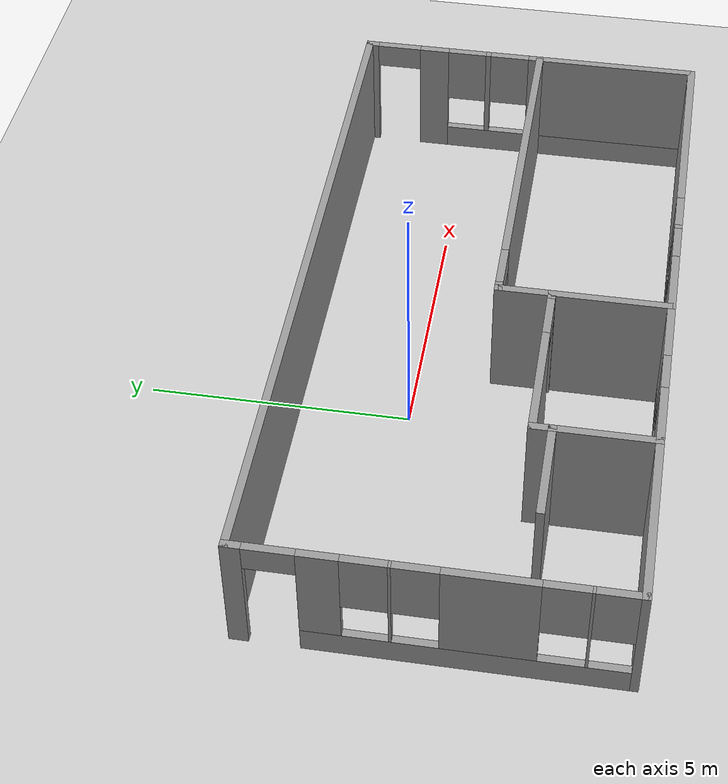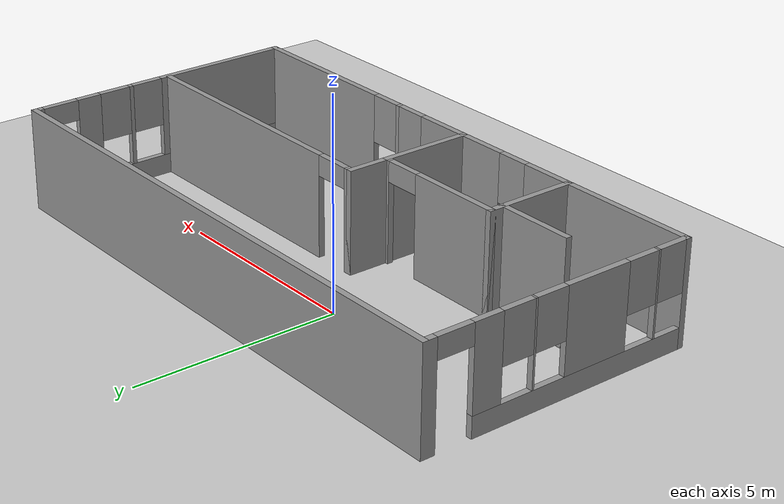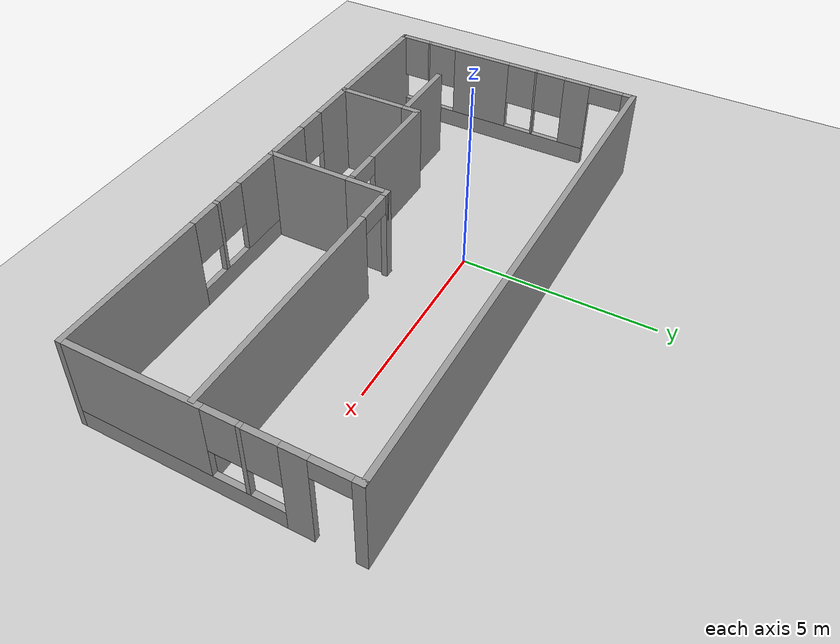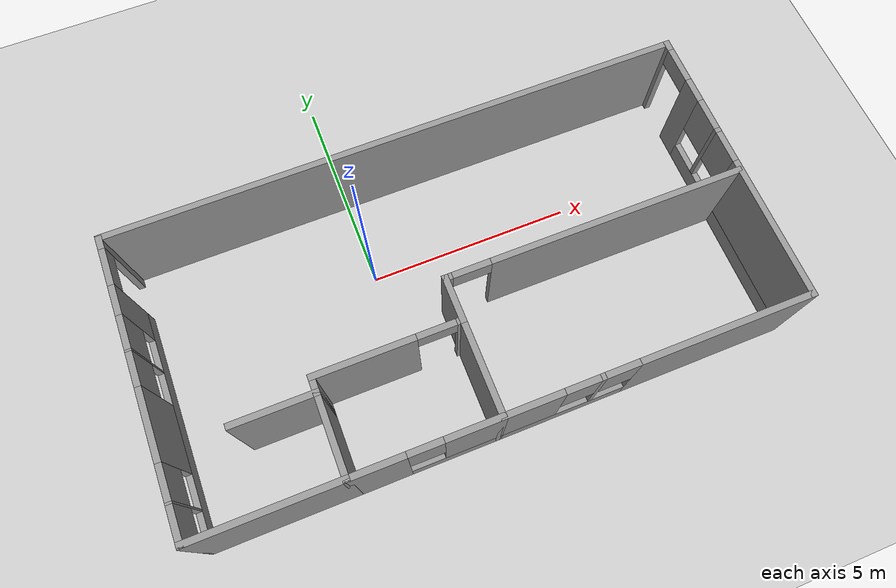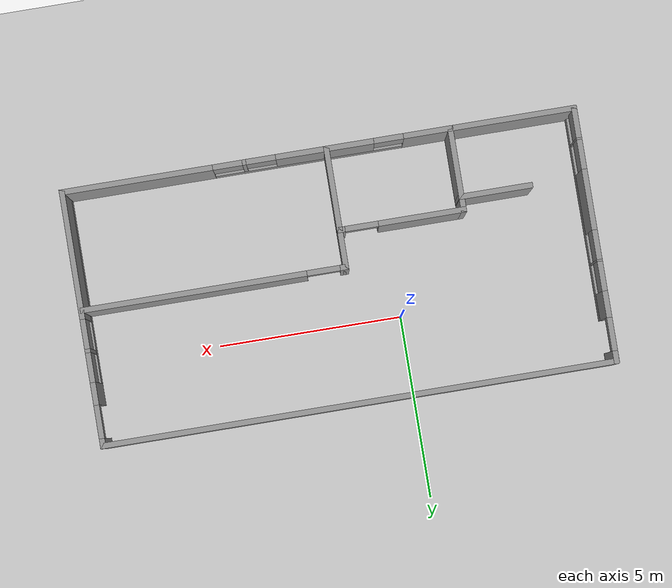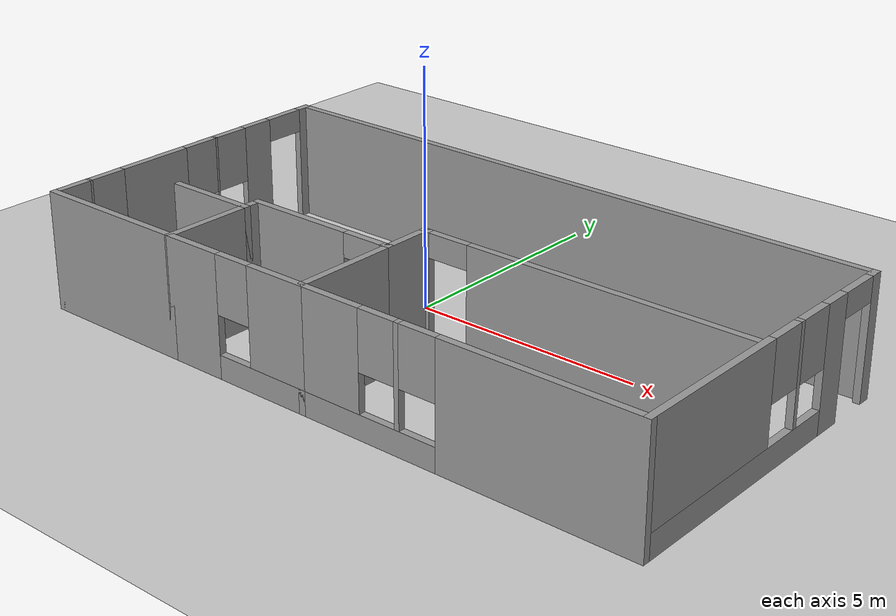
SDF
<sdf version="1.6">
 <world name="default">
  <light name="sun" type="directional">
   <pose>0 0 10 0 -0 0</pose>
   <diffuse>0.8 0.8 0.8 1</diffuse>
   <specular>0.2 0.2 0.2 1</specular>
   <attenuation>
    <range>1000</range>
    <constant>0.9</constant>
    <linear>0.01</linear>
    <quadratic>0.001</quadratic>
   </attenuation>
   <direction>-0.5 0.1 -0.9</direction>
  </light>
  <model name="ground_plane">
   <static>1</static>
   <link name="link">
    <collision name="collision">
     <geometry><plane><normal>0 0 1</normal><size>100 100</size></plane></geometry>
     <surface><friction><ode><mu>100</mu><mu2>50</mu2></ode></friction></surface>
    </collision>
    <visual name="visual">
     <cast_shadows>0</cast_shadows>
     <geometry><plane><normal>0 0 1</normal><size>100 100</size></plane></geometry>
     <material>
      <script><uri>file://media/materials/scripts/gazebo.material</uri><name>Gazebo/Grey</name></script>
     </material>
    </visual>
   </link>
  </model>
  <gravity>0 0 -9.8</gravity>
  <magnetic_field>6e-06 2.3e-05 -4.2e-05</magnetic_field>
  <atmosphere type="adiabatic"/>
  <physics name="default_physics" default="0" type="ode">
   <max_step_size>0.001</max_step_size>
   <real_time_factor>1</real_time_factor>
   <real_time_update_rate>1000</real_time_update_rate>
  </physics>
  <scene><ambient>0.4 0.4 0.4 1</ambient><background>0.7 0.7 0.7 1</background><shadows>1</shadows></scene>
  <spherical_coordinates>
   <surface_model>EARTH_WGS84</surface_model>
   <latitude_deg>0</latitude_deg>
   <longitude_deg>0</longitude_deg>
   <elevation>0</elevation>
   <heading_deg>0</heading_deg>
  </spherical_coordinates>
  <model name="building">
   <pose>1.5027 -1.24911 0 0 -0 0</pose>
   <link name="Wall_11">
    <collision name="Wall_11_Collision">
     <geometry><box><size>3.5 0.15 2.5</size></box></geometry>
     <pose>0 0 1.25 0 -0 0</pose>
    </collision>
    <visual name="Wall_11_Visual">
     <pose>0 0 1.25 0 -0 0</pose>
     <geometry><box><size>3.5 0.15 2.5</size></box></geometry>
     <material>
      <script><uri>file://media/materials/scripts/gazebo.material</uri><name>Gazebo/Grey</name></script>
      <ambient>1 1 1 1</ambient>
     </material>
     <meta><layer>0</layer></meta>
    </visual>
    <pose>-5.25 -3.425 0 0 -0 0</pose>
   </link>
   <link name="Wall_12">
    <collision name="Wall_12_Collision">
     <geometry><box><size>2 0.15 2.5</size></box></geometry>
     <pose>0 0 1.25 0 -0 0</pose>
    </collision>
    <visual name="Wall_12_Visual">
     <pose>0 0 1.25 0 -0 0</pose>
     <geometry><box><size>2 0.15 2.5</size></box></geometry>
     <material>
      <script><uri>file://media/materials/scripts/gazebo.material</uri><name>Gazebo/Grey</name></script>
      <ambient>1 1 1 1</ambient>
     </material>
     <meta><layer>0</layer></meta>
    </visual>
    <pose>-3.575 -2.5 0 0 -0 1.5708</pose>
   </link>
   <link name="Wall_13">
    <collision name="Wall_13_Collision">
     <geometry><box><size>2 0.15 2.5</size></box></geometry>
     <pose>0 0 1.25 0 -0 0</pose>
    </collision>
    <visual name="Wall_13_Visual">
     <pose>0 0 1.25 0 -0 0</pose>
     <geometry><box><size>2 0.15 2.5</size></box></geometry>
     <material>
      <script><uri>file://media/materials/scripts/gazebo.material</uri><name>Gazebo/Grey</name></script>
      <ambient>1 1 1 1</ambient>
     </material>
     <meta><layer>0</layer></meta>
    </visual>
    <pose>-4.5 -1.575 0 0 -0 3.14159</pose>
   </link>
   <link name="Wall_17">
    <collision name="Wall_17_Collision">
     <geometry><box><size>0.5 0.15 2.5</size></box></geometry>
     <pose>0 0 1.25 0 -0 0</pose>
    </collision>
    <visual name="Wall_17_Visual">
     <pose>0 0 1.25 0 -0 0</pose>
     <geometry><box><size>0.5 0.15 2.5</size></box></geometry>
     <material>
      <script><uri>file://media/materials/scripts/gazebo.material</uri><name>Gazebo/Grey</name></script>
      <ambient>1 1 1 1</ambient>
     </material>
     <meta><layer>0</layer></meta>
    </visual>
    <pose>-3.575 -1.4 0 0 -0 1.5708</pose>
   </link>
   <link name="Wall_18">
    <pose>-1.9 -1.225 0 0 -0 0</pose>
    <visual name="Wall_18_Visual_0">
     <pose>-0.55822 0 1.25 0 -0 0</pose>
     <geometry><box><size>2.38356 0.15 2.5</size></box></geometry>
     <material>
      <script><uri>file://media/materials/scripts/gazebo.material</uri><name>Gazebo/Grey</name></script>
      <ambient>1 1 1 1</ambient>
     </material>
     <meta><layer>0</layer></meta>
    </visual>
    <collision name="Wall_18_Collision_0">
     <geometry><box><size>2.38356 0.15 2.5</size></box></geometry>
     <pose>-0.55822 0 1.25 0 -0 0</pose>
    </collision>
    <visual name="Wall_18_Visual_1">
     <pose>1.64178 0 1.25 0 -0 0</pose>
     <geometry><box><size>0.216439 0.15 2.5</size></box></geometry>
     <material>
      <script><uri>file://media/materials/scripts/gazebo.material</uri><name>Gazebo/Grey</name></script>
      <ambient>1 1 1 1</ambient>
     </material>
     <meta><layer>0</layer></meta>
    </visual>
    <collision name="Wall_18_Collision_1">
     <geometry><box><size>0.216439 0.15 2.5</size></box></geometry>
     <pose>1.64178 0 1.25 0 -0 0</pose>
    </collision>
    <visual name="Wall_18_Visual_2">
     <pose>1.08356 0 2.25 0 -0 0</pose>
     <geometry><box><size>0.9 0.15 0.5</size></box></geometry>
     <material>
      <script><uri>file://media/materials/scripts/gazebo.material</uri><name>Gazebo/Grey</name></script>
      <ambient>1 1 1 1</ambient>
     </material>
     <meta><layer>0</layer></meta>
    </visual>
    <collision name="Wall_18_Collision_2">
     <geometry><box><size>0.9 0.15 0.5</size></box></geometry>
     <pose>1.08356 0 2.25 0 -0 0</pose>
    </collision>
   </link>
   <link name="Wall_20">
    <pose>-1.9 -3.425 0 0 -0 0</pose>
    <visual name="Wall_20_Visual_0">
     <pose>-1.07852 0 1.25 0 -0 0</pose>
     <geometry><box><size>1.34295 0.15 2.5</size></box></geometry>
     <material>
      <script><uri>file://media/materials/scripts/gazebo.material</uri><name>Gazebo/Grey</name></script>
      <ambient>1 1 1 1</ambient>
     </material>
     <meta><layer>0</layer></meta>
    </visual>
    <collision name="Wall_20_Collision_0">
     <geometry><box><size>1.34295 0.15 2.5</size></box></geometry>
     <pose>-1.07852 0 1.25 0 -0 0</pose>
    </collision>
    <visual name="Wall_20_Visual_1">
     <pose>0.671476 0 0.25 0 -0 0</pose>
     <geometry><box><size>2.15705 0.15 0.5</size></box></geometry>
     <material>
      <script><uri>file://media/materials/scripts/gazebo.material</uri><name>Gazebo/Grey</name></script>
      <ambient>1 1 1 1</ambient>
     </material>
     <meta><layer>0</layer></meta>
    </visual>
    <collision name="Wall_20_Collision_1">
     <geometry><box><size>2.15705 0.15 0.5</size></box></geometry>
     <pose>0.671476 0 0.25 0 -0 0</pose>
    </collision>
    <visual name="Wall_20_Visual_2">
     <pose>1.07148 0 1.5 0 -0 0</pose>
     <geometry><box><size>1.35705 0.15 2</size></box></geometry>
     <material>
      <script><uri>file://media/materials/scripts/gazebo.material</uri><name>Gazebo/Grey</name></script>
      <ambient>1 1 1 1</ambient>
     </material>
     <meta><layer>0</layer></meta>
    </visual>
    <collision name="Wall_20_Collision_2">
     <geometry><box><size>1.35705 0.15 2</size></box></geometry>
     <pose>1.07148 0 1.5 0 -0 0</pose>
    </collision>
    <visual name="Wall_20_Visual_3">
     <pose>-0.007047 0 1.9 0 -0 0</pose>
     <geometry><box><size>0.8 0.15 1.2</size></box></geometry>
     <material>
      <script><uri>file://media/materials/scripts/gazebo.material</uri><name>Gazebo/Grey</name></script>
      <ambient>1 1 1 1</ambient>
     </material>
     <meta><layer>0</layer></meta>
    </visual>
    <collision name="Wall_20_Collision_3">
     <geometry><box><size>0.8 0.15 1.2</size></box></geometry>
     <pose>-0.007047 0 1.9 0 -0 0</pose>
    </collision>
   </link>
   <link name="Wall_21">
    <collision name="Wall_21_Collision">
     <geometry><box><size>2.35 0.15 2.5</size></box></geometry>
     <pose>0 0 1.25 0 -0 0</pose>
    </collision>
    <visual name="Wall_21_Visual">
     <pose>0 0 1.25 0 -0 0</pose>
     <geometry><box><size>2.35 0.15 2.5</size></box></geometry>
     <material>
      <script><uri>file://media/materials/scripts/gazebo.material</uri><name>Gazebo/Grey</name></script>
      <ambient>1 1 1 1</ambient>
     </material>
     <meta><layer>0</layer></meta>
    </visual>
    <pose>-0.225 -2.325 0 0 -0 1.5708</pose>
   </link>
   <link name="Wall_24">
    <pose>6.925 0 0 0 0 -1.5708</pose>
    <visual name="Wall_24_Visual_0">
     <pose>-3.36395 0 1.25 0 -0 0</pose>
     <geometry><box><size>0.272096 0.15 2.5</size></box></geometry>
     <material>
      <script><uri>file://media/materials/scripts/gazebo.material</uri><name>Gazebo/Grey</name></script>
      <ambient>1 1 1 1</ambient>
     </material>
     <meta><layer>0</layer></meta>
    </visual>
    <collision name="Wall_24_Collision_0">
     <geometry><box><size>0.272096 0.15 2.5</size></box></geometry>
     <pose>-3.36395 0 1.25 0 -0 0</pose>
    </collision>
    <visual name="Wall_24_Visual_1">
     <pose>-2.0214 0 1.25 0 -0 0</pose>
     <geometry><box><size>0.613011 0.15 2.5</size></box></geometry>
     <material>
      <script><uri>file://media/materials/scripts/gazebo.material</uri><name>Gazebo/Grey</name></script>
      <ambient>1 1 1 1</ambient>
     </material>
     <meta><layer>0</layer></meta>
    </visual>
    <collision name="Wall_24_Collision_1">
     <geometry><box><size>0.613011 0.15 2.5</size></box></geometry>
     <pose>-2.0214 0 1.25 0 -0 0</pose>
    </collision>
    <visual name="Wall_24_Visual_2">
     <pose>0.892553 0 0.25 0 -0 0</pose>
     <geometry><box><size>5.21489 0.15 0.5</size></box></geometry>
     <material>
      <script><uri>file://media/materials/scripts/gazebo.material</uri><name>Gazebo/Grey</name></script>
      <ambient>1 1 1 1</ambient>
     </material>
     <meta><layer>0</layer></meta>
    </visual>
    <collision name="Wall_24_Collision_2">
     <geometry><box><size>5.21489 0.15 0.5</size></box></geometry>
     <pose>0.892553 0 0.25 0 -0 0</pose>
    </collision>
    <visual name="Wall_24_Visual_3">
     <pose>-0.86269 0 1.5 0 -0 0</pose>
     <geometry><box><size>0.104407 0.15 2</size></box></geometry>
     <material>
      <script><uri>file://media/materials/scripts/gazebo.material</uri><name>Gazebo/Grey</name></script>
      <ambient>1 1 1 1</ambient>
     </material>
     <meta><layer>0</layer></meta>
    </visual>
    <collision name="Wall_24_Collision_3">
     <geometry><box><size>0.104407 0.15 2</size></box></geometry>
     <pose>-0.86269 0 1.5 0 -0 0</pose>
    </collision>
    <visual name="Wall_24_Visual_4">
     <pose>1.74476 0 1.5 0 -0 0</pose>
     <geometry><box><size>3.51049 0.15 2</size></box></geometry>
     <material>
      <script><uri>file://media/materials/scripts/gazebo.material</uri><name>Gazebo/Grey</name></script>
      <ambient>1 1 1 1</ambient>
     </material>
     <meta><layer>0</layer></meta>
    </visual>
    <collision name="Wall_24_Collision_4">
     <geometry><box><size>3.51049 0.15 2</size></box></geometry>
     <pose>1.74476 0 1.5 0 -0 0</pose>
    </collision>
    <visual name="Wall_24_Visual_5">
     <pose>-1.31489 0 1.9 0 -0 0</pose>
     <geometry><box><size>0.8 0.15 1.2</size></box></geometry>
     <material>
      <script><uri>file://media/materials/scripts/gazebo.material</uri><name>Gazebo/Grey</name></script>
      <ambient>1 1 1 1</ambient>
     </material>
     <meta><layer>0</layer></meta>
    </visual>
    <collision name="Wall_24_Collision_5">
     <geometry><box><size>0.8 0.15 1.2</size></box></geometry>
     <pose>-1.31489 0 1.9 0 -0 0</pose>
    </collision>
    <visual name="Wall_24_Visual_6">
     <pose>-0.410486 0 1.9 0 -0 0</pose>
     <geometry><box><size>0.8 0.15 1.2</size></box></geometry>
     <material>
      <script><uri>file://media/materials/scripts/gazebo.material</uri><name>Gazebo/Grey</name></script>
      <ambient>1 1 1 1</ambient>
     </material>
     <meta><layer>0</layer></meta>
    </visual>
    <collision name="Wall_24_Collision_6">
     <geometry><box><size>0.8 0.15 1.2</size></box></geometry>
     <pose>-0.410486 0 1.9 0 -0 0</pose>
    </collision>
    <visual name="Wall_24_Visual_7">
     <pose>-2.7779 0 2.25 0 -0 0</pose>
     <geometry><box><size>0.9 0.15 0.5</size></box></geometry>
     <material>
      <script><uri>file://media/materials/scripts/gazebo.material</uri><name>Gazebo/Grey</name></script>
      <ambient>1 1 1 1</ambient>
     </material>
     <meta><layer>0</layer></meta>
    </visual>
    <collision name="Wall_24_Collision_7">
     <geometry><box><size>0.9 0.15 0.5</size></box></geometry>
     <pose>-2.7779 0 2.25 0 -0 0</pose>
    </collision>
   </link>
   <link name="Wall_25">
    <pose>3.35 -3.425 0 0 -0 3.14159</pose>
    <visual name="Wall_25_Visual_0">
     <pose>-1.57769 0 1.25 0 -0 0</pose>
     <geometry><box><size>4.14461 0.15 2.5</size></box></geometry>
     <material>
      <script><uri>file://media/materials/scripts/gazebo.material</uri><name>Gazebo/Grey</name></script>
      <ambient>1 1 1 1</ambient>
     </material>
     <meta><layer>0</layer></meta>
    </visual>
    <collision name="Wall_25_Collision_0">
     <geometry><box><size>4.14461 0.15 2.5</size></box></geometry>
     <pose>-1.57769 0 1.25 0 -0 0</pose>
    </collision>
    <visual name="Wall_25_Visual_1">
     <pose>2.07231 0 0.25 0 -0 0</pose>
     <geometry><box><size>3.15538 0.15 0.5</size></box></geometry>
     <material>
      <script><uri>file://media/materials/scripts/gazebo.material</uri><name>Gazebo/Grey</name></script>
      <ambient>1 1 1 1</ambient>
     </material>
     <meta><layer>0</layer></meta>
    </visual>
    <collision name="Wall_25_Collision_1">
     <geometry><box><size>3.15538 0.15 0.5</size></box></geometry>
     <pose>2.07231 0 0.25 0 -0 0</pose>
    </collision>
    <visual name="Wall_25_Visual_2">
     <pose>1.34682 0 1.5 0 -0 0</pose>
     <geometry><box><size>0.104407 0.15 2</size></box></geometry>
     <material>
      <script><uri>file://media/materials/scripts/gazebo.material</uri><name>Gazebo/Grey</name></script>
      <ambient>1 1 1 1</ambient>
     </material>
     <meta><layer>0</layer></meta>
    </visual>
    <collision name="Wall_25_Collision_2">
     <geometry><box><size>0.104407 0.15 2</size></box></geometry>
     <pose>1.34682 0 1.5 0 -0 0</pose>
    </collision>
    <visual name="Wall_25_Visual_3">
     <pose>2.92451 0 1.5 0 -0 0</pose>
     <geometry><box><size>1.45098 0.15 2</size></box></geometry>
     <material>
      <script><uri>file://media/materials/scripts/gazebo.material</uri><name>Gazebo/Grey</name></script>
      <ambient>1 1 1 1</ambient>
     </material>
     <meta><layer>0</layer></meta>
    </visual>
    <collision name="Wall_25_Collision_3">
     <geometry><box><size>1.45098 0.15 2</size></box></geometry>
     <pose>2.92451 0 1.5 0 -0 0</pose>
    </collision>
    <visual name="Wall_25_Visual_4">
     <pose>0.894615 0 1.9 0 -0 0</pose>
     <geometry><box><size>0.8 0.15 1.2</size></box></geometry>
     <material>
      <script><uri>file://media/materials/scripts/gazebo.material</uri><name>Gazebo/Grey</name></script>
      <ambient>1 1 1 1</ambient>
     </material>
     <meta><layer>0</layer></meta>
    </visual>
    <collision name="Wall_25_Collision_4">
     <geometry><box><size>0.8 0.15 1.2</size></box></geometry>
     <pose>0.894615 0 1.9 0 -0 0</pose>
    </collision>
    <visual name="Wall_25_Visual_5">
     <pose>1.79902 0 1.9 0 -0 0</pose>
     <geometry><box><size>0.8 0.15 1.2</size></box></geometry>
     <material>
      <script><uri>file://media/materials/scripts/gazebo.material</uri><name>Gazebo/Grey</name></script>
      <ambient>1 1 1 1</ambient>
     </material>
     <meta><layer>0</layer></meta>
    </visual>
    <collision name="Wall_25_Collision_5">
     <geometry><box><size>0.8 0.15 1.2</size></box></geometry>
     <pose>1.79902 0 1.9 0 -0 0</pose>
    </collision>
   </link>
   <link name="Wall_28">
    <collision name="Wall_28_Collision">
     <geometry><box><size>1.15 0.15 2.5</size></box></geometry>
     <pose>0 0 1.25 0 -0 0</pose>
    </collision>
    <visual name="Wall_28_Visual">
     <pose>0 0 1.25 0 -0 0</pose>
     <geometry><box><size>1.15 0.15 2.5</size></box></geometry>
     <material>
      <script><uri>file://media/materials/scripts/gazebo.material</uri><name>Gazebo/Grey</name></script>
      <ambient>1 1 1 1</ambient>
     </material>
     <meta><layer>0</layer></meta>
    </visual>
    <pose>-0.225 -0.725 0 0 -0 1.5708</pose>
   </link>
   <link name="Wall_30">
    <pose>3.325 -0.225 0 0 -0 0</pose>
    <visual name="Wall_30_Visual_0">
     <pose>-3.50971 0 1.25 0 -0 0</pose>
     <geometry><box><size>0.23057 0.15 2.5</size></box></geometry>
     <material>
      <script><uri>file://media/materials/scripts/gazebo.material</uri><name>Gazebo/Grey</name></script>
      <ambient>1 1 1 1</ambient>
     </material>
     <meta><layer>0</layer></meta>
    </visual>
    <collision name="Wall_30_Collision_0">
     <geometry><box><size>0.23057 0.15 2.5</size></box></geometry>
     <pose>-3.50971 0 1.25 0 -0 0</pose>
    </collision>
    <visual name="Wall_30_Visual_1">
     <pose>0.565285 0 1.25 0 -0 0</pose>
     <geometry><box><size>6.11943 0.15 2.5</size></box></geometry>
     <material>
      <script><uri>file://media/materials/scripts/gazebo.material</uri><name>Gazebo/Grey</name></script>
      <ambient>1 1 1 1</ambient>
     </material>
     <meta><layer>0</layer></meta>
    </visual>
    <collision name="Wall_30_Collision_1">
     <geometry><box><size>6.11943 0.15 2.5</size></box></geometry>
     <pose>0.565285 0 1.25 0 -0 0</pose>
    </collision>
    <visual name="Wall_30_Visual_2">
     <pose>-2.94443 0 2.25 0 -0 0</pose>
     <geometry><box><size>0.9 0.15 0.5</size></box></geometry>
     <material>
      <script><uri>file://media/materials/scripts/gazebo.material</uri><name>Gazebo/Grey</name></script>
      <ambient>1 1 1 1</ambient>
     </material>
     <meta><layer>0</layer></meta>
    </visual>
    <collision name="Wall_30_Collision_2">
     <geometry><box><size>0.9 0.15 0.5</size></box></geometry>
     <pose>-2.94443 0 2.25 0 -0 0</pose>
    </collision>
   </link>
   <link name="Wall_7">
    <pose>-6.925 0 0 0 -0 1.5708</pose>
    <visual name="Wall_7_Visual_0">
     <pose>-3.46047 0 1.25 0 -0 0</pose>
     <geometry><box><size>0.07906 0.15 2.5</size></box></geometry>
     <material>
      <script><uri>file://media/materials/scripts/gazebo.material</uri><name>Gazebo/Grey</name></script>
      <ambient>1 1 1 1</ambient>
     </material>
     <meta><layer>0</layer></meta>
    </visual>
    <collision name="Wall_7_Collision_0">
     <geometry><box><size>0.07906 0.15 2.5</size></box></geometry>
     <pose>-3.46047 0 1.25 0 -0 0</pose>
    </collision>
    <visual name="Wall_7_Visual_1">
     <pose>3.32405 0 1.25 0 -0 0</pose>
     <geometry><box><size>0.351897 0.15 2.5</size></box></geometry>
     <material>
      <script><uri>file://media/materials/scripts/gazebo.material</uri><name>Gazebo/Grey</name></script>
      <ambient>1 1 1 1</ambient>
     </material>
     <meta><layer>0</layer></meta>
    </visual>
    <collision name="Wall_7_Collision_1">
     <geometry><box><size>0.351897 0.15 2.5</size></box></geometry>
     <pose>3.32405 0 1.25 0 -0 0</pose>
    </collision>
    <visual name="Wall_7_Visual_2">
     <pose>-0.586418 0 0.25 0 -0 0</pose>
     <geometry><box><size>5.66904 0.15 0.5</size></box></geometry>
     <material>
      <script><uri>file://media/materials/scripts/gazebo.material</uri><name>Gazebo/Grey</name></script>
      <ambient>1 1 1 1</ambient>
     </material>
     <meta><layer>0</layer></meta>
    </visual>
    <collision name="Wall_7_Collision_2">
     <geometry><box><size>5.66904 0.15 0.5</size></box></geometry>
     <pose>-0.586418 0 0.25 0 -0 0</pose>
    </collision>
    <visual name="Wall_7_Visual_3">
     <pose>-2.59534 0 1.5 0 -0 0</pose>
     <geometry><box><size>0.051207 0.15 2</size></box></geometry>
     <material>
      <script><uri>file://media/materials/scripts/gazebo.material</uri><name>Gazebo/Grey</name></script>
      <ambient>1 1 1 1</ambient>
     </material>
     <meta><layer>0</layer></meta>
    </visual>
    <collision name="Wall_7_Collision_3">
     <geometry><box><size>0.051207 0.15 2</size></box></geometry>
     <pose>-2.59534 0 1.5 0 -0 0</pose>
    </collision>
    <visual name="Wall_7_Visual_4">
     <pose>-0.946124 0 1.5 0 -0 0</pose>
     <geometry><box><size>1.64722 0.15 2</size></box></geometry>
     <material>
      <script><uri>file://media/materials/scripts/gazebo.material</uri><name>Gazebo/Grey</name></script>
      <ambient>1 1 1 1</ambient>
     </material>
     <meta><layer>0</layer></meta>
    </visual>
    <collision name="Wall_7_Collision_4">
     <geometry><box><size>1.64722 0.15 2</size></box></geometry>
     <pose>-0.946124 0 1.5 0 -0 0</pose>
    </collision>
    <visual name="Wall_7_Visual_5">
     <pose>0.703089 0 1.5 0 -0 0</pose>
     <geometry><box><size>0.051206 0.15 2</size></box></geometry>
     <material>
      <script><uri>file://media/materials/scripts/gazebo.material</uri><name>Gazebo/Grey</name></script>
      <ambient>1 1 1 1</ambient>
     </material>
     <meta><layer>0</layer></meta>
    </visual>
    <collision name="Wall_7_Collision_5">
     <geometry><box><size>0.051206 0.15 2</size></box></geometry>
     <pose>0.703089 0 1.5 0 -0 0</pose>
    </collision>
    <visual name="Wall_7_Visual_6">
     <pose>1.8884 0 1.5 0 -0 0</pose>
     <geometry><box><size>0.719412 0.15 2</size></box></geometry>
     <material>
      <script><uri>file://media/materials/scripts/gazebo.material</uri><name>Gazebo/Grey</name></script>
      <ambient>1 1 1 1</ambient>
     </material>
     <meta><layer>0</layer></meta>
    </visual>
    <collision name="Wall_7_Collision_6">
     <geometry><box><size>0.719412 0.15 2</size></box></geometry>
     <pose>1.8884 0 1.5 0 -0 0</pose>
    </collision>
    <visual name="Wall_7_Visual_7">
     <pose>-3.02094 0 1.9 0 -0 0</pose>
     <geometry><box><size>0.8 0.15 1.2</size></box></geometry>
     <material>
      <script><uri>file://media/materials/scripts/gazebo.material</uri><name>Gazebo/Grey</name></script>
      <ambient>1 1 1 1</ambient>
     </material>
     <meta><layer>0</layer></meta>
    </visual>
    <collision name="Wall_7_Collision_7">
     <geometry><box><size>0.8 0.15 1.2</size></box></geometry>
     <pose>-3.02094 0 1.9 0 -0 0</pose>
    </collision>
    <visual name="Wall_7_Visual_8">
     <pose>-2.16973 0 1.9 0 -0 0</pose>
     <geometry><box><size>0.8 0.15 1.2</size></box></geometry>
     <material>
      <script><uri>file://media/materials/scripts/gazebo.material</uri><name>Gazebo/Grey</name></script>
      <ambient>1 1 1 1</ambient>
     </material>
     <meta><layer>0</layer></meta>
    </visual>
    <collision name="Wall_7_Collision_8">
     <geometry><box><size>0.8 0.15 1.2</size></box></geometry>
     <pose>-2.16973 0 1.9 0 -0 0</pose>
    </collision>
    <visual name="Wall_7_Visual_9">
     <pose>0.277485 0 1.9 0 -0 0</pose>
     <geometry><box><size>0.8 0.15 1.2</size></box></geometry>
     <material>
      <script><uri>file://media/materials/scripts/gazebo.material</uri><name>Gazebo/Grey</name></script>
      <ambient>1 1 1 1</ambient>
     </material>
     <meta><layer>0</layer></meta>
    </visual>
    <collision name="Wall_7_Collision_9">
     <geometry><box><size>0.8 0.15 1.2</size></box></geometry>
     <pose>0.277485 0 1.9 0 -0 0</pose>
    </collision>
    <visual name="Wall_7_Visual_10">
     <pose>1.12869 0 1.9 0 -0 0</pose>
     <geometry><box><size>0.8 0.15 1.2</size></box></geometry>
     <material>
      <script><uri>file://media/materials/scripts/gazebo.material</uri><name>Gazebo/Grey</name></script>
      <ambient>1 1 1 1</ambient>
     </material>
     <meta><layer>0</layer></meta>
    </visual>
    <collision name="Wall_7_Collision_10">
     <geometry><box><size>0.8 0.15 1.2</size></box></geometry>
     <pose>1.12869 0 1.9 0 -0 0</pose>
    </collision>
    <visual name="Wall_7_Visual_11">
     <pose>2.6981 0 2.25 0 -0 0</pose>
     <geometry><box><size>0.9 0.15 0.5</size></box></geometry>
     <material>
      <script><uri>file://media/materials/scripts/gazebo.material</uri><name>Gazebo/Grey</name></script>
      <ambient>1 1 1 1</ambient>
     </material>
     <meta><layer>0</layer></meta>
    </visual>
    <collision name="Wall_7_Collision_11">
     <geometry><box><size>0.9 0.15 0.5</size></box></geometry>
     <pose>2.6981 0 2.25 0 -0 0</pose>
    </collision>
   </link>
   <link name="Wall_9">
    <collision name="Wall_9_Collision">
     <geometry><box><size>14 0.15 2.5</size></box></geometry>
     <pose>0 0 1.25 0 -0 0</pose>
    </collision>
    <visual name="Wall_9_Visual">
     <pose>0 0 1.25 0 -0 0</pose>
     <geometry><box><size>14 0.15 2.5</size></box></geometry>
     <material>
      <script><uri>file://media/materials/scripts/gazebo.material</uri><name>Gazebo/Grey</name></script>
      <ambient>1 1 1 1</ambient>
     </material>
     <meta><layer>0</layer></meta>
    </visual>
    <pose>0 3.425 0 0 -0 0</pose>
   </link>
   <static>1</static>
  </model>
 </world>
</sdf>
